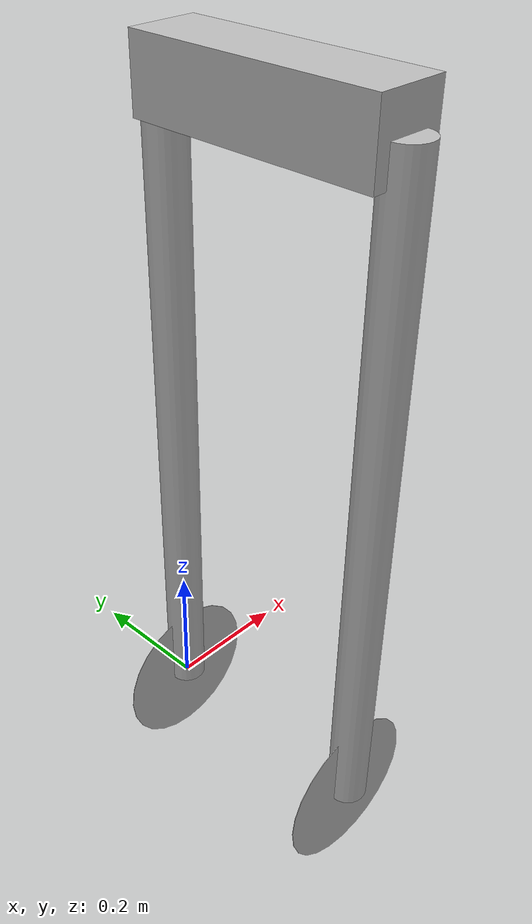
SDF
<?xml version="1.0" ?>
<sdf version='1.5'>
  <model name='WALKER'>
    <link name='LLEG'>
      <pose>0 0 0 0 0 0</pose>

      <inertial>
        <!-- xcm ycm zcm -->
        <pose>0 0.6969 0.1901 0 -0 0</pose>
        <mass>1</mass>
        <inertia>
          <ixx>0.1982</ixx>
          <ixy>0.0071</ixy>
          <ixz>-0.0023</ixz>
          <iyy>0.0186</iyy>
          <iyz>0.0573</iyz>
          <izz>0.1802</izz>
        </inertia>
      </inertial>

      <visual name='l_foot_visual'>
        <!-- base link 0 0 0 -->
        <pose>0 0 0 1.5707963267949 0 0</pose>
        <geometry>
          <cylinder>
            <radius>0.1236</radius>
            <length>0.001</length>
          </cylinder>
        </geometry>
      </visual>

      <visual name='l_leg_visual'>
        <pose>0 0 0.5 0 -0 0</pose>
        <geometry>
          <cylinder>
            <radius>.03</radius>
            <length>1</length>
          </cylinder>
        </geometry>
      </visual>

      <visual name='hip_visual'>
        <pose>0 -0.1812 1 0 -0 0</pose>
        <geometry>
          <box>
            <size>0.1 0.3624 0.1</size>
          </box>
        </geometry>
      </visual>

      <collision name='l_foot_collision'>
      </collision>
    </link>

    <joint name='hip' type='revolute'>
      <pose>0 0.1812 1 0 -0 0</pose>
      <parent>LLEG</parent>
      <child>RLEG</child>
      <axis>
        <xyz>0 1 0</xyz>
        <limit>
          <lower>-1e+16</lower>
          <upper>1e+16</upper>
        </limit>
      </axis>
    </joint>

    <link name='RLEG'>
      <pose>0 -0.3624 0 0 0 0</pose>
      <inertial>
        <!-- xcm -ycm zcm -->
        <pose>0 -0.6969 0.1901 0 -0 0</pose>
        <mass>1</mass>
        <inertia>
          <ixx>0.1982</ixx>
          <ixy>-0.0071</ixy>
          <ixz>-0.0023</ixz>
          <iyy>0.0186</iyy>
          <iyz>-0.0573</iyz>
          <izz>0.1802</izz>
        </inertia>
      </inertial>

      <visual name='r_foot_visual'>
        <pose>0 0 0 1.5707963267949 0 0</pose>
        <geometry>
          <cylinder>
            <radius>0.1236</radius>
            <length>0.001</length>
          </cylinder>
        </geometry>
      </visual>

      <visual name='r_leg_visual'>
        <pose>0 0 0.5 0 -0 0</pose>
        <geometry>
          <cylinder>
            <radius>.03</radius>
            <length>1</length>
          </cylinder>
        </geometry>
      </visual>

      <collision name='r_foot_collision'>
      </collision>
    </link>

  </model>
</sdf>
